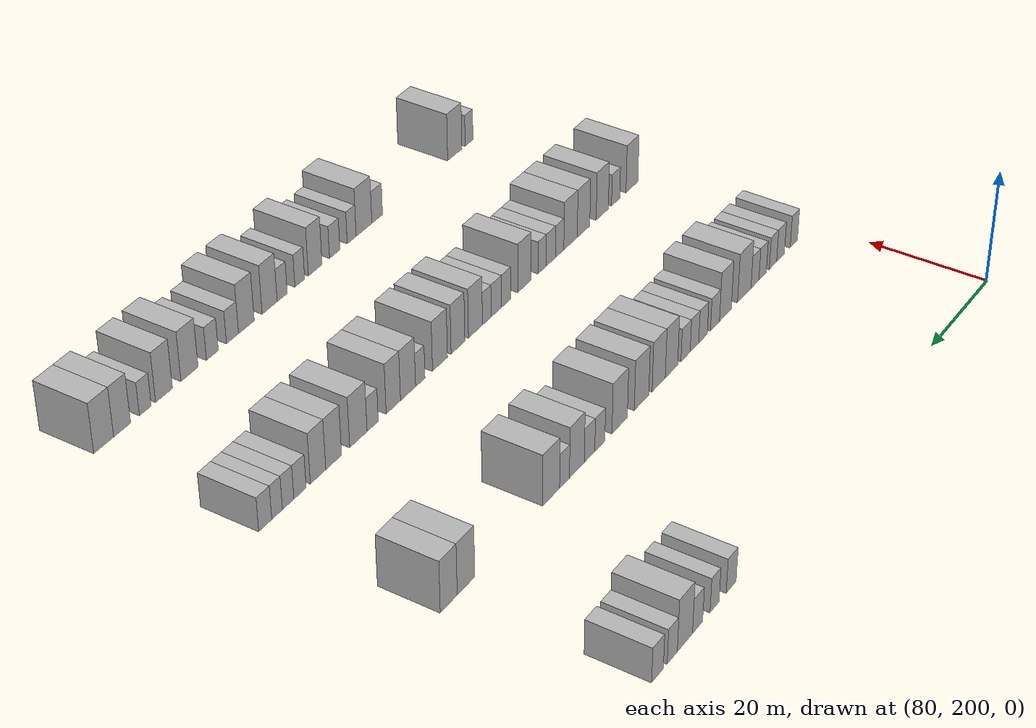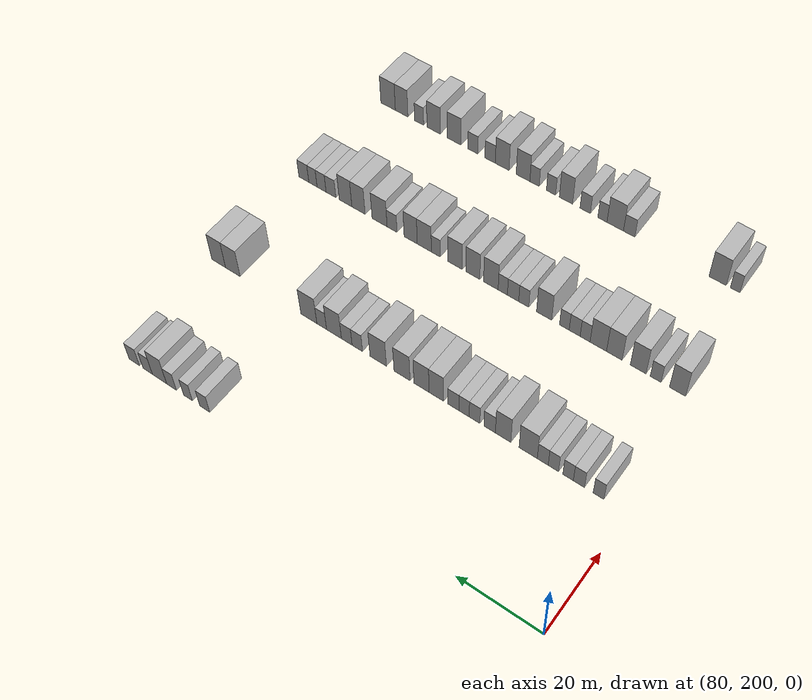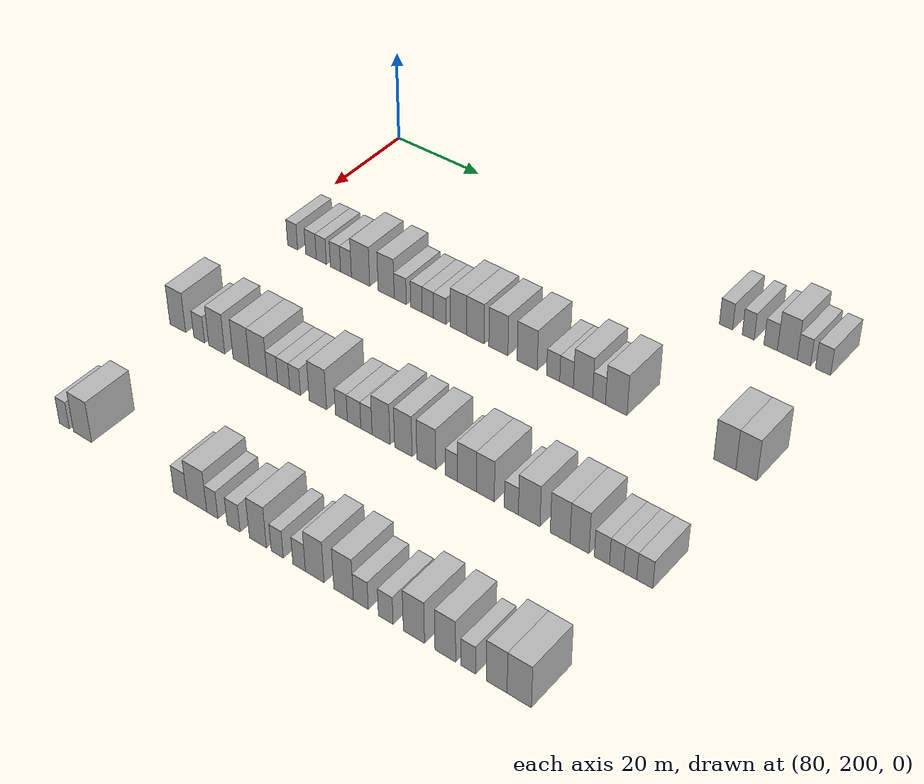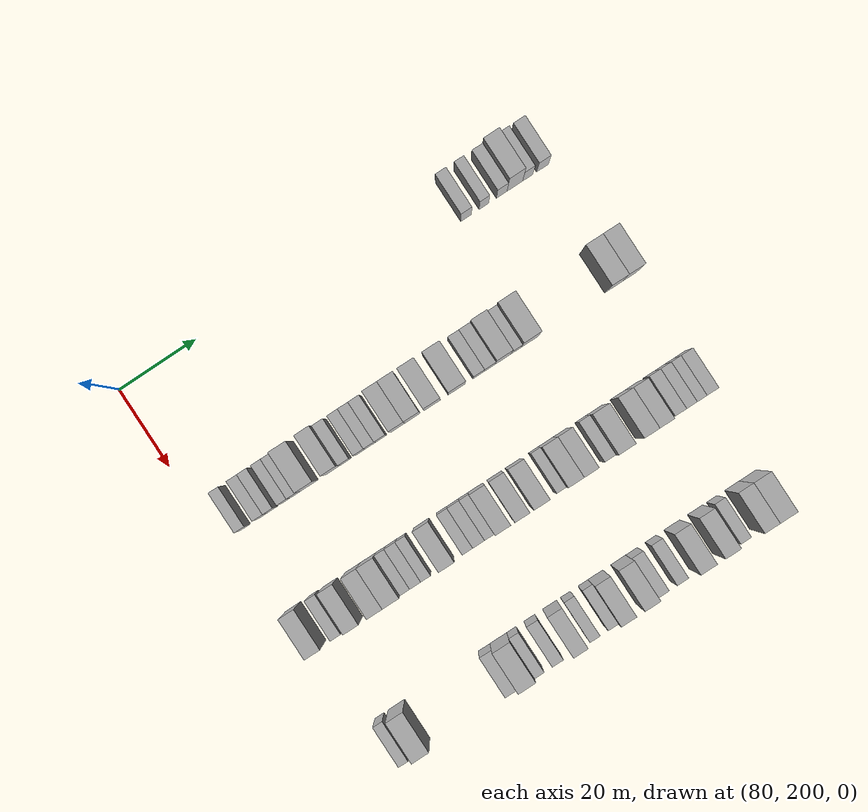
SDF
<sdf version="1.6">
 <world name="default">
  <model name="building_609">
   <static>1</static>
   <pose>85.0000 283.2845 0 0.000000 0.000000 0.000000</pose>
   <link name="link">
    <pose>0 0 3.00 0 0 0</pose>
    <collision name="collision"><geometry><box><size>10.0000 2.7543 6.0000</size></box></geometry></collision>
    <visual name="visual">
     <cast_shadows>0</cast_shadows>
     <geometry><box><size>10.0000 2.7543 6.0000</size></box></geometry>
     <material>
      <script>
       <uri>model://HANNAS_wall/materials/scripts</uri>
       <uri>model://HANNAS_wall/materials/textures</uri>
       <name>vrc/HANNAS_wall</name>
      </script>
     </material>
    </visual>
   </link>
  </model>
  <model name="building_610">
   <static>1</static>
   <pose>85.0000 287.8924 0 0.000000 0.000000 0.000000</pose>
   <link name="link">
    <pose>0 0 3.00 0 0 0</pose>
    <collision name="collision"><geometry><box><size>10.0000 2.4615 6.0000</size></box></geometry></collision>
    <visual name="visual">
     <cast_shadows>0</cast_shadows>
     <geometry><box><size>10.0000 2.4615 6.0000</size></box></geometry>
     <material>
      <script>
       <uri>model://HANNAS_wall/materials/scripts</uri>
       <uri>model://HANNAS_wall/materials/textures</uri>
       <name>vrc/HANNAS_wall</name>
      </script>
     </material>
    </visual>
   </link>
  </model>
  <model name="building_611">
   <static>1</static>
   <pose>85.0000 292.4881 0 0.000000 0.000000 0.000000</pose>
   <link name="link">
    <pose>0 0 3.00 0 0 0</pose>
    <collision name="collision"><geometry><box><size>10.0000 2.7300 6.0000</size></box></geometry></collision>
    <visual name="visual">
     <cast_shadows>0</cast_shadows>
     <geometry><box><size>10.0000 2.7300 6.0000</size></box></geometry>
     <material>
      <script>
       <uri>model://HANNAS_wall/materials/scripts</uri>
       <uri>model://HANNAS_wall/materials/textures</uri>
       <name>vrc/HANNAS_wall</name>
      </script>
     </material>
    </visual>
   </link>
  </model>
  <model name="building_612">
   <static>1</static>
   <pose>85.0000 295.8624 0 0.000000 0.000000 0.000000</pose>
   <link name="link">
    <pose>0 0 4.50 0 0 0</pose>
    <collision name="collision"><geometry><box><size>10.0000 4.0185 9.0000</size></box></geometry></collision>
    <visual name="visual">
     <cast_shadows>0</cast_shadows>
     <geometry><box><size>10.0000 4.0185 9.0000</size></box></geometry>
     <material>
      <script>
       <uri>model://HANNAS_wall/materials/scripts</uri>
       <uri>model://HANNAS_wall/materials/textures</uri>
       <name>vrc/HANNAS_wall</name>
      </script>
     </material>
    </visual>
   </link>
  </model>
  <model name="building_613">
   <static>1</static>
   <pose>85.0000 299.1985 0 0.000000 0.000000 0.000000</pose>
   <link name="link">
    <pose>0 0 3.00 0 0 0</pose>
    <collision name="collision"><geometry><box><size>10.0000 2.6538 6.0000</size></box></geometry></collision>
    <visual name="visual">
     <cast_shadows>0</cast_shadows>
     <geometry><box><size>10.0000 2.6538 6.0000</size></box></geometry>
     <material>
      <script>
       <uri>model://HANNAS_wall/materials/scripts</uri>
       <uri>model://HANNAS_wall/materials/textures</uri>
       <name>vrc/HANNAS_wall</name>
      </script>
     </material>
    </visual>
   </link>
  </model>
  <model name="building_614">
   <static>1</static>
   <pose>85.0000 303.0240 0 0.000000 0.000000 0.000000</pose>
   <link name="link">
    <pose>0 0 3.00 0 0 0</pose>
    <collision name="collision"><geometry><box><size>10.0000 2.9971 6.0000</size></box></geometry></collision>
    <visual name="visual">
     <cast_shadows>0</cast_shadows>
     <geometry><box><size>10.0000 2.9971 6.0000</size></box></geometry>
     <material>
      <script>
       <uri>model://HANNAS_wall/materials/scripts</uri>
       <uri>model://HANNAS_wall/materials/textures</uri>
       <name>vrc/HANNAS_wall</name>
      </script>
     </material>
    </visual>
   </link>
  </model>
  <model name="building_805">
   <static>1</static>
   <pose>115.0000 206.7726 0 0.000000 0.000000 0.000000</pose>
   <link name="link">
    <pose>0 0 3.00 0 0 0</pose>
    <collision name="collision"><geometry><box><size>10.0000 2.4959 6.0000</size></box></geometry></collision>
    <visual name="visual">
     <cast_shadows>0</cast_shadows>
     <geometry><box><size>10.0000 2.4959 6.0000</size></box></geometry>
     <material>
      <script>
       <uri>model://HANNAS_wall/materials/scripts</uri>
       <uri>model://HANNAS_wall/materials/textures</uri>
       <name>vrc/HANNAS_wall</name>
      </script>
     </material>
    </visual>
   </link>
  </model>
  <model name="building_806">
   <static>1</static>
   <pose>115.0000 211.3300 0 0.000000 0.000000 0.000000</pose>
   <link name="link">
    <pose>0 0 3.00 0 0 0</pose>
    <collision name="collision"><geometry><box><size>10.0000 2.6189 6.0000</size></box></geometry></collision>
    <visual name="visual">
     <cast_shadows>0</cast_shadows>
     <geometry><box><size>10.0000 2.6189 6.0000</size></box></geometry>
     <material>
      <script>
       <uri>model://HANNAS_wall/materials/scripts</uri>
       <uri>model://HANNAS_wall/materials/textures</uri>
       <name>vrc/HANNAS_wall</name>
      </script>
     </material>
    </visual>
   </link>
  </model>
  <model name="building_807">
   <static>1</static>
   <pose>115.0000 213.8773 0 0.000000 0.000000 0.000000</pose>
   <link name="link">
    <pose>0 0 3.00 0 0 0</pose>
    <collision name="collision"><geometry><box><size>10.0000 2.4756 6.0000</size></box></geometry></collision>
    <visual name="visual">
     <cast_shadows>0</cast_shadows>
     <geometry><box><size>10.0000 2.4756 6.0000</size></box></geometry>
     <material>
      <script>
       <uri>model://HANNAS_wall/materials/scripts</uri>
       <uri>model://HANNAS_wall/materials/textures</uri>
       <name>vrc/HANNAS_wall</name>
      </script>
     </material>
    </visual>
   </link>
  </model>
  <model name="building_808">
   <static>1</static>
   <pose>115.0000 217.3462 0 0.000000 0.000000 0.000000</pose>
   <link name="link">
    <pose>0 0 3.00 0 0 0</pose>
    <collision name="collision"><geometry><box><size>10.0000 2.4621 6.0000</size></box></geometry></collision>
    <visual name="visual">
     <cast_shadows>0</cast_shadows>
     <geometry><box><size>10.0000 2.4621 6.0000</size></box></geometry>
     <material>
      <script>
       <uri>model://HANNAS_wall/materials/scripts</uri>
       <uri>model://HANNAS_wall/materials/textures</uri>
       <name>vrc/HANNAS_wall</name>
      </script>
     </material>
    </visual>
   </link>
  </model>
  <model name="building_809">
   <static>1</static>
   <pose>115.0000 219.8871 0 0.000000 0.000000 0.000000</pose>
   <link name="link">
    <pose>0 0 3.00 0 0 0</pose>
    <collision name="collision"><geometry><box><size>10.0000 2.6198 6.0000</size></box></geometry></collision>
    <visual name="visual">
     <cast_shadows>0</cast_shadows>
     <geometry><box><size>10.0000 2.6198 6.0000</size></box></geometry>
     <material>
      <script>
       <uri>model://HANNAS_wall/materials/scripts</uri>
       <uri>model://HANNAS_wall/materials/textures</uri>
       <name>vrc/HANNAS_wall</name>
      </script>
     </material>
    </visual>
   </link>
  </model>
  <model name="building_810">
   <static>1</static>
   <pose>115.0000 223.3914 0 0.000000 0.000000 0.000000</pose>
   <link name="link">
    <pose>0 0 4.50 0 0 0</pose>
    <collision name="collision"><geometry><box><size>10.0000 4.3887 9.0000</size></box></geometry></collision>
    <visual name="visual">
     <cast_shadows>0</cast_shadows>
     <geometry><box><size>10.0000 4.3887 9.0000</size></box></geometry>
     <material>
      <script>
       <uri>model://HANNAS_wall/materials/scripts</uri>
       <uri>model://HANNAS_wall/materials/textures</uri>
       <name>vrc/HANNAS_wall</name>
      </script>
     </material>
    </visual>
   </link>
  </model>
  <model name="building_811">
   <static>1</static>
   <pose>115.0000 229.4745 0 0.000000 0.000000 0.000000</pose>
   <link name="link">
    <pose>0 0 4.50 0 0 0</pose>
    <collision name="collision"><geometry><box><size>10.0000 3.7775 9.0000</size></box></geometry></collision>
    <visual name="visual">
     <cast_shadows>0</cast_shadows>
     <geometry><box><size>10.0000 3.7775 9.0000</size></box></geometry>
     <material>
      <script>
       <uri>model://HANNAS_wall/materials/scripts</uri>
       <uri>model://HANNAS_wall/materials/textures</uri>
       <name>vrc/HANNAS_wall</name>
      </script>
     </material>
    </visual>
   </link>
  </model>
  <model name="building_812">
   <static>1</static>
   <pose>115.0000 232.7820 0 0.000000 0.000000 0.000000</pose>
   <link name="link">
    <pose>0 0 3.00 0 0 0</pose>
    <collision name="collision"><geometry><box><size>10.0000 2.8375 6.0000</size></box></geometry></collision>
    <visual name="visual">
     <cast_shadows>0</cast_shadows>
     <geometry><box><size>10.0000 2.8375 6.0000</size></box></geometry>
     <material>
      <script>
       <uri>model://HANNAS_wall/materials/scripts</uri>
       <uri>model://HANNAS_wall/materials/textures</uri>
       <name>vrc/HANNAS_wall</name>
      </script>
     </material>
    </visual>
   </link>
  </model>
  <model name="building_813">
   <static>1</static>
   <pose>115.0000 236.5306 0 0.000000 0.000000 0.000000</pose>
   <link name="link">
    <pose>0 0 3.00 0 0 0</pose>
    <collision name="collision"><geometry><box><size>10.0000 2.6596 6.0000</size></box></geometry></collision>
    <visual name="visual">
     <cast_shadows>0</cast_shadows>
     <geometry><box><size>10.0000 2.6596 6.0000</size></box></geometry>
     <material>
      <script>
       <uri>model://HANNAS_wall/materials/scripts</uri>
       <uri>model://HANNAS_wall/materials/textures</uri>
       <name>vrc/HANNAS_wall</name>
      </script>
     </material>
    </visual>
   </link>
  </model>
  <model name="building_814">
   <static>1</static>
   <pose>115.0000 239.1688 0 0.000000 0.000000 0.000000</pose>
   <link name="link">
    <pose>0 0 3.00 0 0 0</pose>
    <collision name="collision"><geometry><box><size>10.0000 2.6168 6.0000</size></box></geometry></collision>
    <visual name="visual">
     <cast_shadows>0</cast_shadows>
     <geometry><box><size>10.0000 2.6168 6.0000</size></box></geometry>
     <material>
      <script>
       <uri>model://HANNAS_wall/materials/scripts</uri>
       <uri>model://HANNAS_wall/materials/textures</uri>
       <name>vrc/HANNAS_wall</name>
      </script>
     </material>
    </visual>
   </link>
  </model>
  <model name="building_815">
   <static>1</static>
   <pose>115.0000 241.8897 0 0.000000 0.000000 0.000000</pose>
   <link name="link">
    <pose>0 0 3.00 0 0 0</pose>
    <collision name="collision"><geometry><box><size>10.0000 2.8249 6.0000</size></box></geometry></collision>
    <visual name="visual">
     <cast_shadows>0</cast_shadows>
     <geometry><box><size>10.0000 2.8249 6.0000</size></box></geometry>
     <material>
      <script>
       <uri>model://HANNAS_wall/materials/scripts</uri>
       <uri>model://HANNAS_wall/materials/textures</uri>
       <name>vrc/HANNAS_wall</name>
      </script>
     </material>
    </visual>
   </link>
  </model>
  <model name="building_816">
   <static>1</static>
   <pose>115.0000 246.1641 0 0.000000 0.000000 0.000000</pose>
   <link name="link">
    <pose>0 0 4.50 0 0 0</pose>
    <collision name="collision"><geometry><box><size>10.0000 3.7240 9.0000</size></box></geometry></collision>
    <visual name="visual">
     <cast_shadows>0</cast_shadows>
     <geometry><box><size>10.0000 3.7240 9.0000</size></box></geometry>
     <material>
      <script>
       <uri>model://HANNAS_wall/materials/scripts</uri>
       <uri>model://HANNAS_wall/materials/textures</uri>
       <name>vrc/HANNAS_wall</name>
      </script>
     </material>
    </visual>
   </link>
  </model>
  <model name="building_817">
   <static>1</static>
   <pose>115.0000 249.9751 0 0.000000 0.000000 0.000000</pose>
   <link name="link">
    <pose>0 0 4.50 0 0 0</pose>
    <collision name="collision"><geometry><box><size>10.0000 3.8979 9.0000</size></box></geometry></collision>
    <visual name="visual">
     <cast_shadows>0</cast_shadows>
     <geometry><box><size>10.0000 3.8979 9.0000</size></box></geometry>
     <material>
      <script>
       <uri>model://HANNAS_wall/materials/scripts</uri>
       <uri>model://HANNAS_wall/materials/textures</uri>
       <name>vrc/HANNAS_wall</name>
      </script>
     </material>
    </visual>
   </link>
  </model>
  <model name="building_818">
   <static>1</static>
   <pose>115.0000 255.0193 0 0.000000 0.000000 0.000000</pose>
   <link name="link">
    <pose>0 0 4.50 0 0 0</pose>
    <collision name="collision"><geometry><box><size>10.0000 4.1905 9.0000</size></box></geometry></collision>
    <visual name="visual">
     <cast_shadows>0</cast_shadows>
     <geometry><box><size>10.0000 4.1905 9.0000</size></box></geometry>
     <material>
      <script>
       <uri>model://HANNAS_wall/materials/scripts</uri>
       <uri>model://HANNAS_wall/materials/textures</uri>
       <name>vrc/HANNAS_wall</name>
      </script>
     </material>
    </visual>
   </link>
  </model>
  <model name="building_819">
   <static>1</static>
   <pose>115.0000 261.2921 0 0.000000 0.000000 0.000000</pose>
   <link name="link">
    <pose>0 0 4.50 0 0 0</pose>
    <collision name="collision"><geometry><box><size>10.0000 4.3551 9.0000</size></box></geometry></collision>
    <visual name="visual">
     <cast_shadows>0</cast_shadows>
     <geometry><box><size>10.0000 4.3551 9.0000</size></box></geometry>
     <material>
      <script>
       <uri>model://HANNAS_wall/materials/scripts</uri>
       <uri>model://HANNAS_wall/materials/textures</uri>
       <name>vrc/HANNAS_wall</name>
      </script>
     </material>
    </visual>
   </link>
  </model>
  <model name="building_820">
   <static>1</static>
   <pose>115.0000 266.8717 0 0.000000 0.000000 0.000000</pose>
   <link name="link">
    <pose>0 0 3.00 0 0 0</pose>
    <collision name="collision"><geometry><box><size>10.0000 2.8041 6.0000</size></box></geometry></collision>
    <visual name="visual">
     <cast_shadows>0</cast_shadows>
     <geometry><box><size>10.0000 2.8041 6.0000</size></box></geometry>
     <material>
      <script>
       <uri>model://HANNAS_wall/materials/scripts</uri>
       <uri>model://HANNAS_wall/materials/textures</uri>
       <name>vrc/HANNAS_wall</name>
      </script>
     </material>
    </visual>
   </link>
  </model>
  <model name="building_821">
   <static>1</static>
   <pose>115.0000 269.7122 0 0.000000 0.000000 0.000000</pose>
   <link name="link">
    <pose>0 0 3.00 0 0 0</pose>
    <collision name="collision"><geometry><box><size>10.0000 2.8770 6.0000</size></box></geometry></collision>
    <visual name="visual">
     <cast_shadows>0</cast_shadows>
     <geometry><box><size>10.0000 2.8770 6.0000</size></box></geometry>
     <material>
      <script>
       <uri>model://HANNAS_wall/materials/scripts</uri>
       <uri>model://HANNAS_wall/materials/textures</uri>
       <name>vrc/HANNAS_wall</name>
      </script>
     </material>
    </visual>
   </link>
  </model>
  <model name="building_822">
   <static>1</static>
   <pose>115.0000 273.1682 0 0.000000 0.000000 0.000000</pose>
   <link name="link">
    <pose>0 0 4.50 0 0 0</pose>
    <collision name="collision"><geometry><box><size>10.0000 4.0351 9.0000</size></box></geometry></collision>
    <visual name="visual">
     <cast_shadows>0</cast_shadows>
     <geometry><box><size>10.0000 4.0351 9.0000</size></box></geometry>
     <material>
      <script>
       <uri>model://HANNAS_wall/materials/scripts</uri>
       <uri>model://HANNAS_wall/materials/textures</uri>
       <name>vrc/HANNAS_wall</name>
      </script>
     </material>
    </visual>
   </link>
  </model>
  <model name="building_823">
   <static>1</static>
   <pose>115.0000 276.5191 0 0.000000 0.000000 0.000000</pose>
   <link name="link">
    <pose>0 0 3.00 0 0 0</pose>
    <collision name="collision"><geometry><box><size>10.0000 2.6665 6.0000</size></box></geometry></collision>
    <visual name="visual">
     <cast_shadows>0</cast_shadows>
     <geometry><box><size>10.0000 2.6665 6.0000</size></box></geometry>
     <material>
      <script>
       <uri>model://HANNAS_wall/materials/scripts</uri>
       <uri>model://HANNAS_wall/materials/textures</uri>
       <name>vrc/HANNAS_wall</name>
      </script>
     </material>
    </visual>
   </link>
  </model>
  <model name="building_824">
   <static>1</static>
   <pose>115.0000 280.0731 0 0.000000 0.000000 0.000000</pose>
   <link name="link">
    <pose>0 0 4.50 0 0 0</pose>
    <collision name="collision"><geometry><box><size>10.0000 4.4416 9.0000</size></box></geometry></collision>
    <visual name="visual">
     <cast_shadows>0</cast_shadows>
     <geometry><box><size>10.0000 4.4416 9.0000</size></box></geometry>
     <material>
      <script>
       <uri>model://HANNAS_wall/materials/scripts</uri>
       <uri>model://HANNAS_wall/materials/textures</uri>
       <name>vrc/HANNAS_wall</name>
      </script>
     </material>
    </visual>
   </link>
  </model>
  <model name="building_825">
   <static>1</static>
   <pose>115.0000 301.6822 0 0.000000 0.000000 0.000000</pose>
   <link name="link">
    <pose>0 0 4.50 0 0 0</pose>
    <collision name="collision"><geometry><box><size>10.0000 4.2589 9.0000</size></box></geometry></collision>
    <visual name="visual">
     <cast_shadows>0</cast_shadows>
     <geometry><box><size>10.0000 4.2589 9.0000</size></box></geometry>
     <material>
      <script>
       <uri>model://HANNAS_wall/materials/scripts</uri>
       <uri>model://HANNAS_wall/materials/textures</uri>
       <name>vrc/HANNAS_wall</name>
      </script>
     </material>
    </visual>
   </link>
  </model>
  <model name="building_826">
   <static>1</static>
   <pose>115.0000 305.8350 0 0.000000 0.000000 0.000000</pose>
   <link name="link">
    <pose>0 0 4.50 0 0 0</pose>
    <collision name="collision"><geometry><box><size>10.0000 4.0467 9.0000</size></box></geometry></collision>
    <visual name="visual">
     <cast_shadows>0</cast_shadows>
     <geometry><box><size>10.0000 4.0467 9.0000</size></box></geometry>
     <material>
      <script>
       <uri>model://HANNAS_wall/materials/scripts</uri>
       <uri>model://HANNAS_wall/materials/textures</uri>
       <name>vrc/HANNAS_wall</name>
      </script>
     </material>
    </visual>
   </link>
  </model>
  <model name="building_1019">
   <static>1</static>
   <pose>145.0000 206.0727 0 0.000000 0.000000 0.000000</pose>
   <link name="link">
    <pose>0 0 4.50 0 0 0</pose>
    <collision name="collision"><geometry><box><size>10.0000 3.8540 9.0000</size></box></geometry></collision>
    <visual name="visual">
     <cast_shadows>0</cast_shadows>
     <geometry><box><size>10.0000 3.8540 9.0000</size></box></geometry>
     <material>
      <script>
       <uri>model://HANNAS_wall/materials/scripts</uri>
       <uri>model://HANNAS_wall/materials/textures</uri>
       <name>vrc/HANNAS_wall</name>
      </script>
     </material>
    </visual>
   </link>
  </model>
  <model name="building_1020">
   <static>1</static>
   <pose>145.0000 211.3154 0 0.000000 0.000000 0.000000</pose>
   <link name="link">
    <pose>0 0 3.00 0 0 0</pose>
    <collision name="collision"><geometry><box><size>10.0000 2.6314 6.0000</size></box></geometry></collision>
    <visual name="visual">
     <cast_shadows>0</cast_shadows>
     <geometry><box><size>10.0000 2.6314 6.0000</size></box></geometry>
     <material>
      <script>
       <uri>model://HANNAS_wall/materials/scripts</uri>
       <uri>model://HANNAS_wall/materials/textures</uri>
       <name>vrc/HANNAS_wall</name>
      </script>
     </material>
    </visual>
   </link>
  </model>
  <model name="building_1021">
   <static>1</static>
   <pose>145.0000 215.5536 0 0.000000 0.000000 0.000000</pose>
   <link name="link">
    <pose>0 0 4.50 0 0 0</pose>
    <collision name="collision"><geometry><box><size>10.0000 3.8449 9.0000</size></box></geometry></collision>
    <visual name="visual">
     <cast_shadows>0</cast_shadows>
     <geometry><box><size>10.0000 3.8449 9.0000</size></box></geometry>
     <material>
      <script>
       <uri>model://HANNAS_wall/materials/scripts</uri>
       <uri>model://HANNAS_wall/materials/textures</uri>
       <name>vrc/HANNAS_wall</name>
      </script>
     </material>
    </visual>
   </link>
  </model>
  <model name="building_1022">
   <static>1</static>
   <pose>145.0000 221.4021 0 0.000000 0.000000 0.000000</pose>
   <link name="link">
    <pose>0 0 4.50 0 0 0</pose>
    <collision name="collision"><geometry><box><size>10.0000 3.8522 9.0000</size></box></geometry></collision>
    <visual name="visual">
     <cast_shadows>0</cast_shadows>
     <geometry><box><size>10.0000 3.8522 9.0000</size></box></geometry>
     <material>
      <script>
       <uri>model://HANNAS_wall/materials/scripts</uri>
       <uri>model://HANNAS_wall/materials/textures</uri>
       <name>vrc/HANNAS_wall</name>
      </script>
     </material>
    </visual>
   </link>
  </model>
  <model name="building_1023">
   <static>1</static>
   <pose>145.0000 225.3874 0 0.000000 0.000000 0.000000</pose>
   <link name="link">
    <pose>0 0 4.50 0 0 0</pose>
    <collision name="collision"><geometry><box><size>10.0000 4.1183 9.0000</size></box></geometry></collision>
    <visual name="visual">
     <cast_shadows>0</cast_shadows>
     <geometry><box><size>10.0000 4.1183 9.0000</size></box></geometry>
     <material>
      <script>
       <uri>model://HANNAS_wall/materials/scripts</uri>
       <uri>model://HANNAS_wall/materials/textures</uri>
       <name>vrc/HANNAS_wall</name>
      </script>
     </material>
    </visual>
   </link>
  </model>
  <model name="building_1024">
   <static>1</static>
   <pose>145.0000 228.6957 0 0.000000 0.000000 0.000000</pose>
   <link name="link">
    <pose>0 0 3.00 0 0 0</pose>
    <collision name="collision"><geometry><box><size>10.0000 2.4983 6.0000</size></box></geometry></collision>
    <visual name="visual">
     <cast_shadows>0</cast_shadows>
     <geometry><box><size>10.0000 2.4983 6.0000</size></box></geometry>
     <material>
      <script>
       <uri>model://HANNAS_wall/materials/scripts</uri>
       <uri>model://HANNAS_wall/materials/textures</uri>
       <name>vrc/HANNAS_wall</name>
      </script>
     </material>
    </visual>
   </link>
  </model>
  <model name="building_1025">
   <static>1</static>
   <pose>145.0000 231.3260 0 0.000000 0.000000 0.000000</pose>
   <link name="link">
    <pose>0 0 3.00 0 0 0</pose>
    <collision name="collision"><geometry><box><size>10.0000 2.7624 6.0000</size></box></geometry></collision>
    <visual name="visual">
     <cast_shadows>0</cast_shadows>
     <geometry><box><size>10.0000 2.7624 6.0000</size></box></geometry>
     <material>
      <script>
       <uri>model://HANNAS_wall/materials/scripts</uri>
       <uri>model://HANNAS_wall/materials/textures</uri>
       <name>vrc/HANNAS_wall</name>
      </script>
     </material>
    </visual>
   </link>
  </model>
  <model name="building_1026">
   <static>1</static>
   <pose>145.0000 233.9379 0 0.000000 0.000000 0.000000</pose>
   <link name="link">
    <pose>0 0 3.00 0 0 0</pose>
    <collision name="collision"><geometry><box><size>10.0000 2.4613 6.0000</size></box></geometry></collision>
    <visual name="visual">
     <cast_shadows>0</cast_shadows>
     <geometry><box><size>10.0000 2.4613 6.0000</size></box></geometry>
     <material>
      <script>
       <uri>model://HANNAS_wall/materials/scripts</uri>
       <uri>model://HANNAS_wall/materials/textures</uri>
       <name>vrc/HANNAS_wall</name>
      </script>
     </material>
    </visual>
   </link>
  </model>
  <model name="building_1027">
   <static>1</static>
   <pose>145.0000 239.1234 0 0.000000 0.000000 0.000000</pose>
   <link name="link">
    <pose>0 0 4.50 0 0 0</pose>
    <collision name="collision"><geometry><box><size>10.0000 3.9098 9.0000</size></box></geometry></collision>
    <visual name="visual">
     <cast_shadows>0</cast_shadows>
     <geometry><box><size>10.0000 3.9098 9.0000</size></box></geometry>
     <material>
      <script>
       <uri>model://HANNAS_wall/materials/scripts</uri>
       <uri>model://HANNAS_wall/materials/textures</uri>
       <name>vrc/HANNAS_wall</name>
      </script>
     </material>
    </visual>
   </link>
  </model>
  <model name="building_1028">
   <static>1</static>
   <pose>145.0000 244.3934 0 0.000000 0.000000 0.000000</pose>
   <link name="link">
    <pose>0 0 3.00 0 0 0</pose>
    <collision name="collision"><geometry><box><size>10.0000 2.6301 6.0000</size></box></geometry></collision>
    <visual name="visual">
     <cast_shadows>0</cast_shadows>
     <geometry><box><size>10.0000 2.6301 6.0000</size></box></geometry>
     <material>
      <script>
       <uri>model://HANNAS_wall/materials/scripts</uri>
       <uri>model://HANNAS_wall/materials/textures</uri>
       <name>vrc/HANNAS_wall</name>
      </script>
     </material>
    </visual>
   </link>
  </model>
  <model name="building_1029">
   <static>1</static>
   <pose>145.0000 247.1963 0 0.000000 0.000000 0.000000</pose>
   <link name="link">
    <pose>0 0 3.00 0 0 0</pose>
    <collision name="collision"><geometry><box><size>10.0000 2.9758 6.0000</size></box></geometry></collision>
    <visual name="visual">
     <cast_shadows>0</cast_shadows>
     <geometry><box><size>10.0000 2.9758 6.0000</size></box></geometry>
     <material>
      <script>
       <uri>model://HANNAS_wall/materials/scripts</uri>
       <uri>model://HANNAS_wall/materials/textures</uri>
       <name>vrc/HANNAS_wall</name>
      </script>
     </material>
    </visual>
   </link>
  </model>
  <model name="building_1030">
   <static>1</static>
   <pose>145.0000 249.9085 0 0.000000 0.000000 0.000000</pose>
   <link name="link">
    <pose>0 0 3.00 0 0 0</pose>
    <collision name="collision"><geometry><box><size>10.0000 2.4486 6.0000</size></box></geometry></collision>
    <visual name="visual">
     <cast_shadows>0</cast_shadows>
     <geometry><box><size>10.0000 2.4486 6.0000</size></box></geometry>
     <material>
      <script>
       <uri>model://HANNAS_wall/materials/scripts</uri>
       <uri>model://HANNAS_wall/materials/textures</uri>
       <name>vrc/HANNAS_wall</name>
      </script>
     </material>
    </visual>
   </link>
  </model>
  <model name="building_1031">
   <static>1</static>
   <pose>145.0000 253.0707 0 0.000000 0.000000 0.000000</pose>
   <link name="link">
    <pose>0 0 4.50 0 0 0</pose>
    <collision name="collision"><geometry><box><size>10.0000 3.8757 9.0000</size></box></geometry></collision>
    <visual name="visual">
     <cast_shadows>0</cast_shadows>
     <geometry><box><size>10.0000 3.8757 9.0000</size></box></geometry>
     <material>
      <script>
       <uri>model://HANNAS_wall/materials/scripts</uri>
       <uri>model://HANNAS_wall/materials/textures</uri>
       <name>vrc/HANNAS_wall</name>
      </script>
     </material>
    </visual>
   </link>
  </model>
  <model name="building_1032">
   <static>1</static>
   <pose>145.0000 257.8764 0 0.000000 0.000000 0.000000</pose>
   <link name="link">
    <pose>0 0 4.50 0 0 0</pose>
    <collision name="collision"><geometry><box><size>10.0000 3.7357 9.0000</size></box></geometry></collision>
    <visual name="visual">
     <cast_shadows>0</cast_shadows>
     <geometry><box><size>10.0000 3.7357 9.0000</size></box></geometry>
     <material>
      <script>
       <uri>model://HANNAS_wall/materials/scripts</uri>
       <uri>model://HANNAS_wall/materials/textures</uri>
       <name>vrc/HANNAS_wall</name>
      </script>
     </material>
    </visual>
   </link>
  </model>
  <model name="building_1033">
   <static>1</static>
   <pose>145.0000 262.7396 0 0.000000 0.000000 0.000000</pose>
   <link name="link">
    <pose>0 0 4.50 0 0 0</pose>
    <collision name="collision"><geometry><box><size>10.0000 3.9906 9.0000</size></box></geometry></collision>
    <visual name="visual">
     <cast_shadows>0</cast_shadows>
     <geometry><box><size>10.0000 3.9906 9.0000</size></box></geometry>
     <material>
      <script>
       <uri>model://HANNAS_wall/materials/scripts</uri>
       <uri>model://HANNAS_wall/materials/textures</uri>
       <name>vrc/HANNAS_wall</name>
      </script>
     </material>
    </visual>
   </link>
  </model>
  <model name="building_1034">
   <static>1</static>
   <pose>145.0000 267.9630 0 0.000000 0.000000 0.000000</pose>
   <link name="link">
    <pose>0 0 3.00 0 0 0</pose>
    <collision name="collision"><geometry><box><size>10.0000 2.4563 6.0000</size></box></geometry></collision>
    <visual name="visual">
     <cast_shadows>0</cast_shadows>
     <geometry><box><size>10.0000 2.4563 6.0000</size></box></geometry>
     <material>
      <script>
       <uri>model://HANNAS_wall/materials/scripts</uri>
       <uri>model://HANNAS_wall/materials/textures</uri>
       <name>vrc/HANNAS_wall</name>
      </script>
     </material>
    </visual>
   </link>
  </model>
  <model name="building_1035">
   <static>1</static>
   <pose>145.0000 271.1531 0 0.000000 0.000000 0.000000</pose>
   <link name="link">
    <pose>0 0 4.50 0 0 0</pose>
    <collision name="collision"><geometry><box><size>10.0000 3.9239 9.0000</size></box></geometry></collision>
    <visual name="visual">
     <cast_shadows>0</cast_shadows>
     <geometry><box><size>10.0000 3.9239 9.0000</size></box></geometry>
     <material>
      <script>
       <uri>model://HANNAS_wall/materials/scripts</uri>
       <uri>model://HANNAS_wall/materials/textures</uri>
       <name>vrc/HANNAS_wall</name>
      </script>
     </material>
    </visual>
   </link>
  </model>
  <model name="building_1036">
   <static>1</static>
   <pose>145.0000 274.9503 0 0.000000 0.000000 0.000000</pose>
   <link name="link">
    <pose>0 0 4.50 0 0 0</pose>
    <collision name="collision"><geometry><box><size>10.0000 3.6705 9.0000</size></box></geometry></collision>
    <visual name="visual">
     <cast_shadows>0</cast_shadows>
     <geometry><box><size>10.0000 3.6705 9.0000</size></box></geometry>
     <material>
      <script>
       <uri>model://HANNAS_wall/materials/scripts</uri>
       <uri>model://HANNAS_wall/materials/textures</uri>
       <name>vrc/HANNAS_wall</name>
      </script>
     </material>
    </visual>
   </link>
  </model>
  <model name="building_1037">
   <static>1</static>
   <pose>145.0000 280.1926 0 0.000000 0.000000 0.000000</pose>
   <link name="link">
    <pose>0 0 3.00 0 0 0</pose>
    <collision name="collision"><geometry><box><size>10.0000 2.8141 6.0000</size></box></geometry></collision>
    <visual name="visual">
     <cast_shadows>0</cast_shadows>
     <geometry><box><size>10.0000 2.8141 6.0000</size></box></geometry>
     <material>
      <script>
       <uri>model://HANNAS_wall/materials/scripts</uri>
       <uri>model://HANNAS_wall/materials/textures</uri>
       <name>vrc/HANNAS_wall</name>
      </script>
     </material>
    </visual>
   </link>
  </model>
  <model name="building_1038">
   <static>1</static>
   <pose>145.0000 283.7467 0 0.000000 0.000000 0.000000</pose>
   <link name="link">
    <pose>0 0 4.50 0 0 0</pose>
    <collision name="collision"><geometry><box><size>10.0000 4.2941 9.0000</size></box></geometry></collision>
    <visual name="visual">
     <cast_shadows>0</cast_shadows>
     <geometry><box><size>10.0000 4.2941 9.0000</size></box></geometry>
     <material>
      <script>
       <uri>model://HANNAS_wall/materials/scripts</uri>
       <uri>model://HANNAS_wall/materials/textures</uri>
       <name>vrc/HANNAS_wall</name>
      </script>
     </material>
    </visual>
   </link>
  </model>
  <model name="building_1039">
   <static>1</static>
   <pose>145.0000 289.8044 0 0.000000 0.000000 0.000000</pose>
   <link name="link">
    <pose>0 0 4.50 0 0 0</pose>
    <collision name="collision"><geometry><box><size>10.0000 3.8212 9.0000</size></box></geometry></collision>
    <visual name="visual">
     <cast_shadows>0</cast_shadows>
     <geometry><box><size>10.0000 3.8212 9.0000</size></box></geometry>
     <material>
      <script>
       <uri>model://HANNAS_wall/materials/scripts</uri>
       <uri>model://HANNAS_wall/materials/textures</uri>
       <name>vrc/HANNAS_wall</name>
      </script>
     </material>
    </visual>
   </link>
  </model>
  <model name="building_1040">
   <static>1</static>
   <pose>145.0000 293.5568 0 0.000000 0.000000 0.000000</pose>
   <link name="link">
    <pose>0 0 4.50 0 0 0</pose>
    <collision name="collision"><geometry><box><size>10.0000 3.6838 9.0000</size></box></geometry></collision>
    <visual name="visual">
     <cast_shadows>0</cast_shadows>
     <geometry><box><size>10.0000 3.6838 9.0000</size></box></geometry>
     <material>
      <script>
       <uri>model://HANNAS_wall/materials/scripts</uri>
       <uri>model://HANNAS_wall/materials/textures</uri>
       <name>vrc/HANNAS_wall</name>
      </script>
     </material>
    </visual>
   </link>
  </model>
  <model name="building_1041">
   <static>1</static>
   <pose>145.0000 297.8398 0 0.000000 0.000000 0.000000</pose>
   <link name="link">
    <pose>0 0 3.00 0 0 0</pose>
    <collision name="collision"><geometry><box><size>10.0000 2.8821 6.0000</size></box></geometry></collision>
    <visual name="visual">
     <cast_shadows>0</cast_shadows>
     <geometry><box><size>10.0000 2.8821 6.0000</size></box></geometry>
     <material>
      <script>
       <uri>model://HANNAS_wall/materials/scripts</uri>
       <uri>model://HANNAS_wall/materials/textures</uri>
       <name>vrc/HANNAS_wall</name>
      </script>
     </material>
    </visual>
   </link>
  </model>
  <model name="building_1042">
   <static>1</static>
   <pose>145.0000 300.6120 0 0.000000 0.000000 0.000000</pose>
   <link name="link">
    <pose>0 0 3.00 0 0 0</pose>
    <collision name="collision"><geometry><box><size>10.0000 2.6623 6.0000</size></box></geometry></collision>
    <visual name="visual">
     <cast_shadows>0</cast_shadows>
     <geometry><box><size>10.0000 2.6623 6.0000</size></box></geometry>
     <material>
      <script>
       <uri>model://HANNAS_wall/materials/scripts</uri>
       <uri>model://HANNAS_wall/materials/textures</uri>
       <name>vrc/HANNAS_wall</name>
      </script>
     </material>
    </visual>
   </link>
  </model>
  <model name="building_1043">
   <static>1</static>
   <pose>145.0000 303.1692 0 0.000000 0.000000 0.000000</pose>
   <link name="link">
    <pose>0 0 3.00 0 0 0</pose>
    <collision name="collision"><geometry><box><size>10.0000 2.4521 6.0000</size></box></geometry></collision>
    <visual name="visual">
     <cast_shadows>0</cast_shadows>
     <geometry><box><size>10.0000 2.4521 6.0000</size></box></geometry>
     <material>
      <script>
       <uri>model://HANNAS_wall/materials/scripts</uri>
       <uri>model://HANNAS_wall/materials/textures</uri>
       <name>vrc/HANNAS_wall</name>
      </script>
     </material>
    </visual>
   </link>
  </model>
  <model name="building_1044">
   <static>1</static>
   <pose>145.0000 305.8803 0 0.000000 0.000000 0.000000</pose>
   <link name="link">
    <pose>0 0 3.00 0 0 0</pose>
    <collision name="collision"><geometry><box><size>10.0000 2.9701 6.0000</size></box></geometry></collision>
    <visual name="visual">
     <cast_shadows>0</cast_shadows>
     <geometry><box><size>10.0000 2.9701 6.0000</size></box></geometry>
     <material>
      <script>
       <uri>model://HANNAS_wall/materials/scripts</uri>
       <uri>model://HANNAS_wall/materials/textures</uri>
       <name>vrc/HANNAS_wall</name>
      </script>
     </material>
    </visual>
   </link>
  </model>
  <model name="building_1245">
   <static>1</static>
   <pose>175.0000 208.7568 0 0.000000 0.000000 0.000000</pose>
   <link name="link">
    <pose>0 0 3.00 0 0 0</pose>
    <collision name="collision"><geometry><box><size>10.0000 2.4026 6.0000</size></box></geometry></collision>
    <visual name="visual">
     <cast_shadows>0</cast_shadows>
     <geometry><box><size>10.0000 2.4026 6.0000</size></box></geometry>
     <material>
      <script>
       <uri>model://HANNAS_wall/materials/scripts</uri>
       <uri>model://HANNAS_wall/materials/textures</uri>
       <name>vrc/HANNAS_wall</name>
      </script>
     </material>
    </visual>
   </link>
  </model>
  <model name="building_1246">
   <static>1</static>
   <pose>175.0000 213.1120 0 0.000000 0.000000 0.000000</pose>
   <link name="link">
    <pose>0 0 4.50 0 0 0</pose>
    <collision name="collision"><geometry><box><size>10.0000 4.3076 9.0000</size></box></geometry></collision>
    <visual name="visual">
     <cast_shadows>0</cast_shadows>
     <geometry><box><size>10.0000 4.3076 9.0000</size></box></geometry>
     <material>
      <script>
       <uri>model://HANNAS_wall/materials/scripts</uri>
       <uri>model://HANNAS_wall/materials/textures</uri>
       <name>vrc/HANNAS_wall</name>
      </script>
     </material>
    </visual>
   </link>
  </model>
  <model name="building_1247">
   <static>1</static>
   <pose>175.0000 235.7600 0 0.000000 0.000000 0.000000</pose>
   <link name="link">
    <pose>0 0 3.00 0 0 0</pose>
    <collision name="collision"><geometry><box><size>10.0000 2.9962 6.0000</size></box></geometry></collision>
    <visual name="visual">
     <cast_shadows>0</cast_shadows>
     <geometry><box><size>10.0000 2.9962 6.0000</size></box></geometry>
     <material>
      <script>
       <uri>model://HANNAS_wall/materials/scripts</uri>
       <uri>model://HANNAS_wall/materials/textures</uri>
       <name>vrc/HANNAS_wall</name>
      </script>
     </material>
    </visual>
   </link>
  </model>
  <model name="building_1248">
   <static>1</static>
   <pose>175.0000 239.4415 0 0.000000 0.000000 0.000000</pose>
   <link name="link">
    <pose>0 0 4.50 0 0 0</pose>
    <collision name="collision"><geometry><box><size>10.0000 4.3668 9.0000</size></box></geometry></collision>
    <visual name="visual">
     <cast_shadows>0</cast_shadows>
     <geometry><box><size>10.0000 4.3668 9.0000</size></box></geometry>
     <material>
      <script>
       <uri>model://HANNAS_wall/materials/scripts</uri>
       <uri>model://HANNAS_wall/materials/textures</uri>
       <name>vrc/HANNAS_wall</name>
      </script>
     </material>
    </visual>
   </link>
  </model>
  <model name="building_1249">
   <static>1</static>
   <pose>175.0000 242.8455 0 0.000000 0.000000 0.000000</pose>
   <link name="link">
    <pose>0 0 3.00 0 0 0</pose>
    <collision name="collision"><geometry><box><size>10.0000 2.4413 6.0000</size></box></geometry></collision>
    <visual name="visual">
     <cast_shadows>0</cast_shadows>
     <geometry><box><size>10.0000 2.4413 6.0000</size></box></geometry>
     <material>
      <script>
       <uri>model://HANNAS_wall/materials/scripts</uri>
       <uri>model://HANNAS_wall/materials/textures</uri>
       <name>vrc/HANNAS_wall</name>
      </script>
     </material>
    </visual>
   </link>
  </model>
  <model name="building_1250">
   <static>1</static>
   <pose>175.0000 247.4726 0 0.000000 0.000000 0.000000</pose>
   <link name="link">
    <pose>0 0 3.00 0 0 0</pose>
    <collision name="collision"><geometry><box><size>10.0000 2.8128 6.0000</size></box></geometry></collision>
    <visual name="visual">
     <cast_shadows>0</cast_shadows>
     <geometry><box><size>10.0000 2.8128 6.0000</size></box></geometry>
     <material>
      <script>
       <uri>model://HANNAS_wall/materials/scripts</uri>
       <uri>model://HANNAS_wall/materials/textures</uri>
       <name>vrc/HANNAS_wall</name>
      </script>
     </material>
    </visual>
   </link>
  </model>
  <model name="building_1251">
   <static>1</static>
   <pose>175.0000 252.6921 0 0.000000 0.000000 0.000000</pose>
   <link name="link">
    <pose>0 0 4.50 0 0 0</pose>
    <collision name="collision"><geometry><box><size>10.0000 3.6262 9.0000</size></box></geometry></collision>
    <visual name="visual">
     <cast_shadows>0</cast_shadows>
     <geometry><box><size>10.0000 3.6262 9.0000</size></box></geometry>
     <material>
      <script>
       <uri>model://HANNAS_wall/materials/scripts</uri>
       <uri>model://HANNAS_wall/materials/textures</uri>
       <name>vrc/HANNAS_wall</name>
      </script>
     </material>
    </visual>
   </link>
  </model>
  <model name="building_1252">
   <static>1</static>
   <pose>175.0000 256.7776 0 0.000000 0.000000 0.000000</pose>
   <link name="link">
    <pose>0 0 3.00 0 0 0</pose>
    <collision name="collision"><geometry><box><size>10.0000 2.5450 6.0000</size></box></geometry></collision>
    <visual name="visual">
     <cast_shadows>0</cast_shadows>
     <geometry><box><size>10.0000 2.5450 6.0000</size></box></geometry>
     <material>
      <script>
       <uri>model://HANNAS_wall/materials/scripts</uri>
       <uri>model://HANNAS_wall/materials/textures</uri>
       <name>vrc/HANNAS_wall</name>
      </script>
     </material>
    </visual>
   </link>
  </model>
  <model name="building_1253">
   <static>1</static>
   <pose>175.0000 261.3473 0 0.000000 0.000000 0.000000</pose>
   <link name="link">
    <pose>0 0 3.00 0 0 0</pose>
    <collision name="collision"><geometry><box><size>10.0000 2.5944 6.0000</size></box></geometry></collision>
    <visual name="visual">
     <cast_shadows>0</cast_shadows>
     <geometry><box><size>10.0000 2.5944 6.0000</size></box></geometry>
     <material>
      <script>
       <uri>model://HANNAS_wall/materials/scripts</uri>
       <uri>model://HANNAS_wall/materials/textures</uri>
       <name>vrc/HANNAS_wall</name>
      </script>
     </material>
    </visual>
   </link>
  </model>
  <model name="building_1254">
   <static>1</static>
   <pose>175.0000 264.5603 0 0.000000 0.000000 0.000000</pose>
   <link name="link">
    <pose>0 0 4.50 0 0 0</pose>
    <collision name="collision"><geometry><box><size>10.0000 3.8317 9.0000</size></box></geometry></collision>
    <visual name="visual">
     <cast_shadows>0</cast_shadows>
     <geometry><box><size>10.0000 3.8317 9.0000</size></box></geometry>
     <material>
      <script>
       <uri>model://HANNAS_wall/materials/scripts</uri>
       <uri>model://HANNAS_wall/materials/textures</uri>
       <name>vrc/HANNAS_wall</name>
      </script>
     </material>
    </visual>
   </link>
  </model>
  <model name="building_1255">
   <static>1</static>
   <pose>175.0000 270.4330 0 0.000000 0.000000 0.000000</pose>
   <link name="link">
    <pose>0 0 4.50 0 0 0</pose>
    <collision name="collision"><geometry><box><size>10.0000 3.9136 9.0000</size></box></geometry></collision>
    <visual name="visual">
     <cast_shadows>0</cast_shadows>
     <geometry><box><size>10.0000 3.9136 9.0000</size></box></geometry>
     <material>
      <script>
       <uri>model://HANNAS_wall/materials/scripts</uri>
       <uri>model://HANNAS_wall/materials/textures</uri>
       <name>vrc/HANNAS_wall</name>
      </script>
     </material>
    </visual>
   </link>
  </model>
  <model name="building_1256">
   <static>1</static>
   <pose>175.0000 273.8794 0 0.000000 0.000000 0.000000</pose>
   <link name="link">
    <pose>0 0 3.00 0 0 0</pose>
    <collision name="collision"><geometry><box><size>10.0000 2.9792 6.0000</size></box></geometry></collision>
    <visual name="visual">
     <cast_shadows>0</cast_shadows>
     <geometry><box><size>10.0000 2.9792 6.0000</size></box></geometry>
     <material>
      <script>
       <uri>model://HANNAS_wall/materials/scripts</uri>
       <uri>model://HANNAS_wall/materials/textures</uri>
       <name>vrc/HANNAS_wall</name>
      </script>
     </material>
    </visual>
   </link>
  </model>
  <model name="building_1257">
   <static>1</static>
   <pose>175.0000 278.8076 0 0.000000 0.000000 0.000000</pose>
   <link name="link">
    <pose>0 0 3.00 0 0 0</pose>
    <collision name="collision"><geometry><box><size>10.0000 2.8772 6.0000</size></box></geometry></collision>
    <visual name="visual">
     <cast_shadows>0</cast_shadows>
     <geometry><box><size>10.0000 2.8772 6.0000</size></box></geometry>
     <material>
      <script>
       <uri>model://HANNAS_wall/materials/scripts</uri>
       <uri>model://HANNAS_wall/materials/textures</uri>
       <name>vrc/HANNAS_wall</name>
      </script>
     </material>
    </visual>
   </link>
  </model>
  <model name="building_1258">
   <static>1</static>
   <pose>175.0000 284.2896 0 0.000000 0.000000 0.000000</pose>
   <link name="link">
    <pose>0 0 4.50 0 0 0</pose>
    <collision name="collision"><geometry><box><size>10.0000 4.0867 9.0000</size></box></geometry></collision>
    <visual name="visual">
     <cast_shadows>0</cast_shadows>
     <geometry><box><size>10.0000 4.0867 9.0000</size></box></geometry>
     <material>
      <script>
       <uri>model://HANNAS_wall/materials/scripts</uri>
       <uri>model://HANNAS_wall/materials/textures</uri>
       <name>vrc/HANNAS_wall</name>
      </script>
     </material>
    </visual>
   </link>
  </model>
  <model name="building_1259">
   <static>1</static>
   <pose>175.0000 290.2891 0 0.000000 0.000000 0.000000</pose>
   <link name="link">
    <pose>0 0 4.50 0 0 0</pose>
    <collision name="collision"><geometry><box><size>10.0000 3.9124 9.0000</size></box></geometry></collision>
    <visual name="visual">
     <cast_shadows>0</cast_shadows>
     <geometry><box><size>10.0000 3.9124 9.0000</size></box></geometry>
     <material>
      <script>
       <uri>model://HANNAS_wall/materials/scripts</uri>
       <uri>model://HANNAS_wall/materials/textures</uri>
       <name>vrc/HANNAS_wall</name>
      </script>
     </material>
    </visual>
   </link>
  </model>
  <model name="building_1260">
   <static>1</static>
   <pose>175.0000 294.5961 0 0.000000 0.000000 0.000000</pose>
   <link name="link">
    <pose>0 0 3.00 0 0 0</pose>
    <collision name="collision"><geometry><box><size>10.0000 2.7016 6.0000</size></box></geometry></collision>
    <visual name="visual">
     <cast_shadows>0</cast_shadows>
     <geometry><box><size>10.0000 2.7016 6.0000</size></box></geometry>
     <material>
      <script>
       <uri>model://HANNAS_wall/materials/scripts</uri>
       <uri>model://HANNAS_wall/materials/textures</uri>
       <name>vrc/HANNAS_wall</name>
      </script>
     </material>
    </visual>
   </link>
  </model>
  <model name="building_1261">
   <static>1</static>
   <pose>175.0000 299.8515 0 0.000000 0.000000 0.000000</pose>
   <link name="link">
    <pose>0 0 4.50 0 0 0</pose>
    <collision name="collision"><geometry><box><size>10.0000 3.8092 9.0000</size></box></geometry></collision>
    <visual name="visual">
     <cast_shadows>0</cast_shadows>
     <geometry><box><size>10.0000 3.8092 9.0000</size></box></geometry>
     <material>
      <script>
       <uri>model://HANNAS_wall/materials/scripts</uri>
       <uri>model://HANNAS_wall/materials/textures</uri>
       <name>vrc/HANNAS_wall</name>
      </script>
     </material>
    </visual>
   </link>
  </model>
  <model name="building_1262">
   <static>1</static>
   <pose>175.0000 303.9562 0 0.000000 0.000000 0.000000</pose>
   <link name="link">
    <pose>0 0 4.50 0 0 0</pose>
    <collision name="collision"><geometry><box><size>10.0000 4.4001 9.0000</size></box></geometry></collision>
    <visual name="visual">
     <cast_shadows>0</cast_shadows>
     <geometry><box><size>10.0000 4.4001 9.0000</size></box></geometry>
     <material>
      <script>
       <uri>model://HANNAS_wall/materials/scripts</uri>
       <uri>model://HANNAS_wall/materials/textures</uri>
       <name>vrc/HANNAS_wall</name>
      </script>
     </material>
    </visual>
   </link>
  </model>
 </world>
</sdf>
